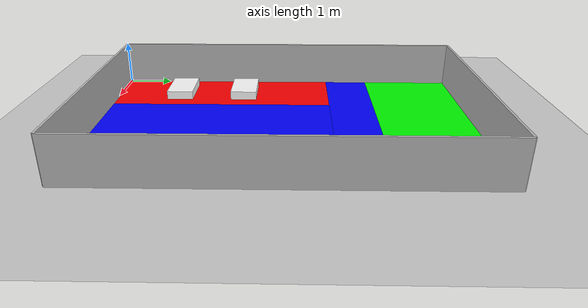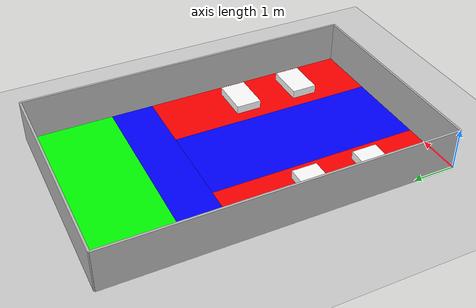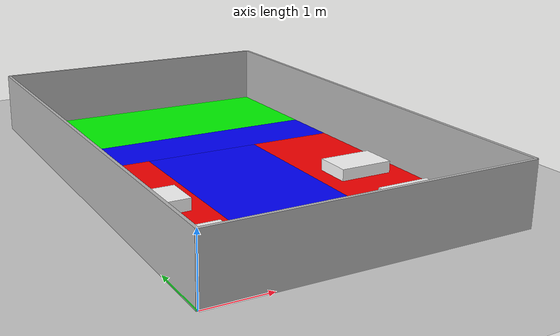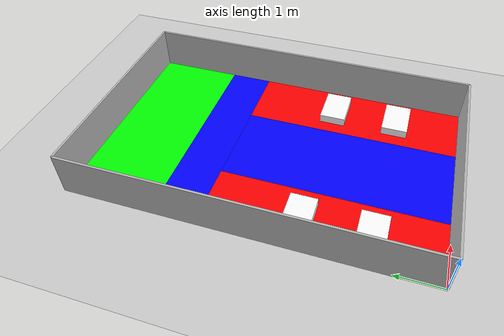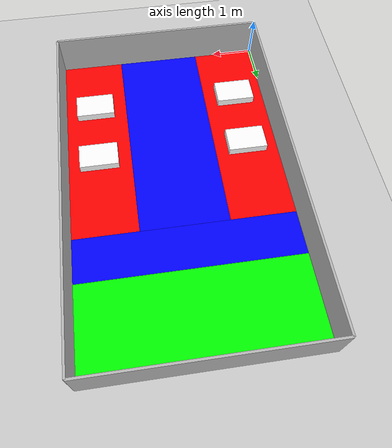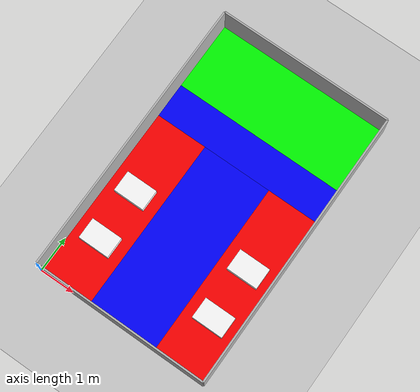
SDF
<sdf version="1.7">
 <world name="default">
  <light name="sun" type="directional">
   <pose>0 0 10 0 -0 0</pose>
   <diffuse>0.8 0.8 0.8 1</diffuse>
   <specular>0.2 0.2 0.2 1</specular>
   <attenuation>
    <range>1000</range>
    <constant>0.9</constant>
    <linear>0.01</linear>
    <quadratic>0.001</quadratic>
   </attenuation>
   <direction>-0.5 0.1 -0.9</direction>
   <spot><inner_angle>0</inner_angle><outer_angle>0</outer_angle><falloff>0</falloff></spot>
  </light>
  <model name="ground_plane">
   <static>1</static>
   <link name="link">
    <collision name="collision">
     <geometry><plane><normal>0 0 1</normal><size>100 100</size></plane></geometry>
     <surface>
      <contact><collide_bitmask>65535</collide_bitmask></contact>
      <friction><ode><mu>100</mu><mu2>50</mu2></ode></friction>
     </surface>
    </collision>
    <visual name="visual">
     <cast_shadows>0</cast_shadows>
     <geometry><plane><normal>0 0 1</normal><size>100 100</size></plane></geometry>
     <material>
      <script><uri>file://media/materials/scripts/gazebo.material</uri><name>Gazebo/Grey</name></script>
     </material>
    </visual>
   </link>
  </model>
  <model name="robot_road">
   <static>true</static>
   <link name="vertical_bar">
    <visual name="vertical_visual">
     <geometry><plane><size>2 5</size></plane></geometry>
     <material><ambient>0 0 1 1</ambient><diffuse>0 0 1 1</diffuse></material>
     <pose>2.5 2.5 0.005 0 0 0</pose>
    </visual>
   </link>
   <link name="horizontal_bar">
    <visual name="horizontal_visual">
     <geometry><plane><size>5 1</size></plane></geometry>
     <material><ambient>0 0 1 1</ambient><diffuse>0 0 1 1</diffuse></material>
     <pose>2.5 5.5 0.005 0 0 0</pose>
    </visual>
   </link>
  </model>
  <model name="agent_area">
   <static>true</static>
   <link name="left_bar">
    <visual name="left_bar">
     <geometry><plane><size>1.5 5</size></plane></geometry>
     <material><ambient>1 0 0 1</ambient><diffuse>1 0 0 1</diffuse></material>
     <pose>0.75 2.5 0.005 0 0 0</pose>
    </visual>
   </link>
   <link name="right_bar">
    <visual name="right_bar">
     <geometry><plane><size>1.5 5</size></plane></geometry>
     <material><ambient>1 0 0 1</ambient><diffuse>1 0 0 1</diffuse></material>
     <pose>4.25 2.5 0.005 0 0 0</pose>
    </visual>
   </link>
  </model>
  <model name="kitchen">
   <static>true</static>
   <link name="kitchen_bar">
    <visual name="kitchen_bar">
     <geometry><plane><size>5 2</size></plane></geometry>
     <material><ambient>0 1 0 1</ambient><diffuse>0 1 0 1</diffuse></material>
     <pose>2.5 7 0.005 0 0 0</pose>
    </visual>
   </link>
  </model>
  <gravity>0 0 -9.8</gravity>
  <magnetic_field>6e-06 2.3e-05 -4.2e-05</magnetic_field>
  <atmosphere type="adiabatic"/>
  <physics type="ode">
   <max_step_size>0.001</max_step_size>
   <real_time_factor>1</real_time_factor>
   <real_time_update_rate>1000</real_time_update_rate>
  </physics>
  <scene><ambient>0.4 0.4 0.4 1</ambient><background>0.7 0.7 0.7 1</background><shadows>1</shadows></scene>
  <audio><device>default</device></audio>
  <spherical_coordinates>
   <surface_model>EARTH_WGS84</surface_model>
   <latitude_deg>0</latitude_deg>
   <longitude_deg>0</longitude_deg>
   <elevation>0</elevation>
   <heading_deg>0</heading_deg>
  </spherical_coordinates>
  <model name="box1">
   <static>true</static>
   <link name="link">
    <pose>0.75 1.5 0.1 0 0 0</pose>
    <visual name="visual">
     <geometry><box><size>0.9 0.6 0.2</size></box></geometry>
     <material><ambient>1 1 1 1</ambient><diffuse>1 1 1 1</diffuse></material>
    </visual>
    <collision name="collision"><geometry><box><size>0.9 0.6 0.2</size></box></geometry></collision>
   </link>
  </model>
  <model name="box2">
   <static>true</static>
   <link name="link">
    <pose>0.75 3 0.1 0 0 0</pose>
    <visual name="visual">
     <geometry><box><size>0.9 0.6 0.2</size></box></geometry>
     <material><ambient>1 1 1 1</ambient><diffuse>1 1 1 1</diffuse></material>
    </visual>
    <collision name="collision"><geometry><box><size>0.9 0.6 0.2</size></box></geometry></collision>
   </link>
  </model>
  <model name="box3">
   <static>true</static>
   <link name="link">
    <pose>4.25 1.5 0.1 0 0 0</pose>
    <visual name="visual">
     <geometry><box><size>0.9 0.6 0.2</size></box></geometry>
     <material><ambient>1 1 1 1</ambient><diffuse>1 1 1 1</diffuse></material>
    </visual>
    <collision name="collision"><geometry><box><size>0.9 0.6 0.2</size></box></geometry></collision>
   </link>
  </model>
  <model name="box4">
   <static>true</static>
   <link name="link">
    <pose>4.25 3 0.1 0 0 0</pose>
    <visual name="visual">
     <geometry><box><size>0.9 0.6 0.2</size></box></geometry>
     <material><ambient>1 1 1 1</ambient><diffuse>1 1 1 1</diffuse></material>
    </visual>
    <collision name="collision"><geometry><box><size>0.9 0.6 0.2</size></box></geometry></collision>
   </link>
  </model>
  <model name="N_wall">
   <static>true</static>
   <link name="link">
    <pose>2.5 8 0.5 0 0 0</pose>
    <visual name="visual"><geometry><box><size>5 0.05 1</size></box></geometry></visual>
    <collision name="collision"><geometry><box><size>5 0.05 1</size></box></geometry></collision>
   </link>
  </model>
  <model name="S_wall">
   <static>true</static>
   <link name="link">
    <pose>2.5 0 0.5 0 0 0</pose>
    <visual name="visual"><geometry><box><size>5 0.05 1</size></box></geometry></visual>
    <collision name="collision"><geometry><box><size>5 0.05 1</size></box></geometry></collision>
   </link>
  </model>
  <model name="E_wall">
   <static>true</static>
   <link name="link">
    <pose>5 4 0.5 0 0 0</pose>
    <visual name="visual"><geometry><box><size>0.05 8 1</size></box></geometry></visual>
    <collision name="collision"><geometry><box><size>0.05 8 1</size></box></geometry></collision>
   </link>
  </model>
  <model name="W_wall">
   <static>true</static>
   <link name="link">
    <pose>0 4 0.5 0 0 0</pose>
    <visual name="visual"><geometry><box><size>0.05 8 1</size></box></geometry></visual>
    <collision name="collision"><geometry><box><size>0.05 8 1</size></box></geometry></collision>
   </link>
  </model>
  <plugin name="gazebo_ros_factory" filename="/opt/ros/humble/lib/libgazebo_ros_factory.so"/>
 </world>
</sdf>
